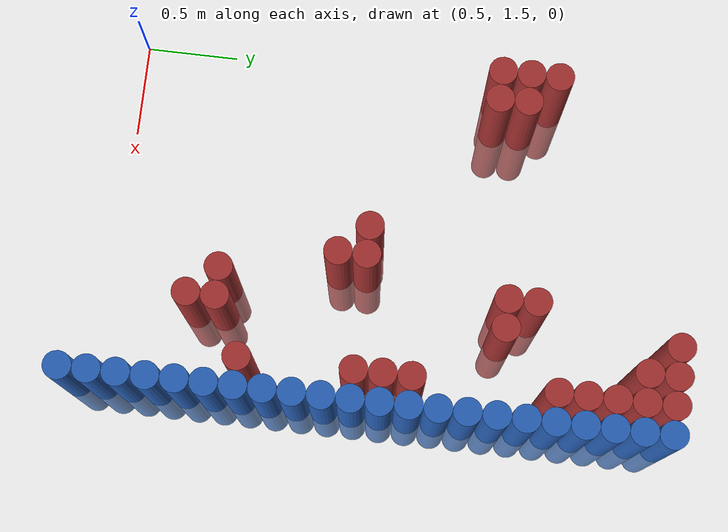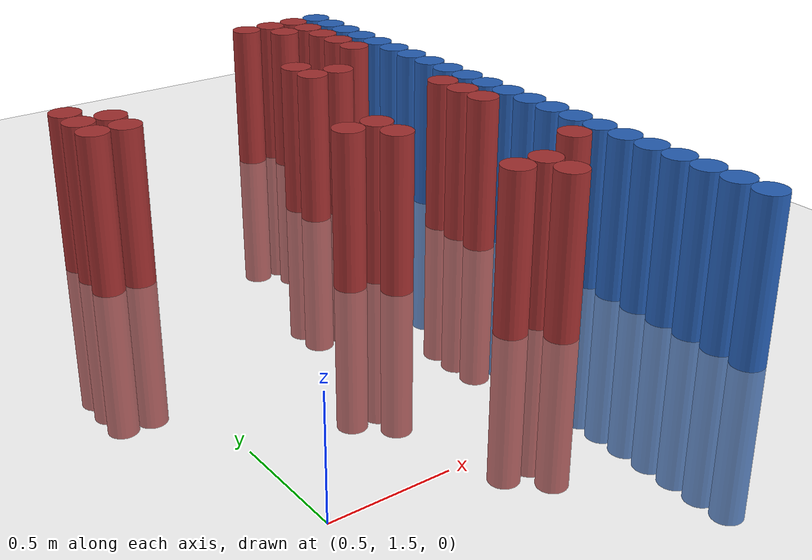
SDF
<sdf version="1.6">
 <world name="default">
  <model name="ground_plane">
   <static>1</static>
   <link name="link">
    <collision name="collision">
     <geometry><plane><normal>0 0 1</normal><size>100 100</size></plane></geometry>
     <surface><friction><ode><mu>100</mu><mu2>50</mu2></ode></friction></surface>
    </collision>
    <visual name="visual">
     <cast_shadows>0</cast_shadows>
     <geometry><plane><normal>0 0 1</normal><size>100 100</size></plane></geometry>
     <material>
      <script><uri>file://media/materials/scripts/gazebo.material</uri><name>Gazebo/Grey</name></script>
     </material>
    </visual>
   </link>
  </model>
  <model name="unit_cylinder_176">
   <static>1</static>
   <pose>0.625000 3.475000 0.000000 0.000000 0.000000 0.000000</pose>
   <link name="link">
    <inertial>
     <mass>1</mass>
     <inertia><ixx>0.145833</ixx><ixy>0</ixy><ixz>0</ixz><iyy>0.145833</iyy><iyz>0</iyz><izz>0.125</izz></inertia>
    </inertial>
    <collision name="collision">
     <geometry><cylinder><radius>0.075000</radius><length>1.5</length></cylinder></geometry>
    </collision>
    <visual name="visual">
     <geometry><cylinder><radius>0.075000</radius><length>1.5</length></cylinder></geometry>
     <material>
      <ambient>0.648000 0.192000 0.192000 1</ambient>
      <diffuse>0.648000 0.192000 0.192000 1</diffuse>
     </material>
     <material>
      <script><name>Gazebo/Grey</name><uri>file://media/materials/scripts/gazebo.material</uri></script>
     </material>
    </visual>
   </link>
  </model>
  <model name="unit_cylinder_177">
   <static>1</static>
   <pose>0.625000 3.625000 0.000000 0.000000 0.000000 0.000000</pose>
   <link name="link">
    <inertial>
     <mass>1</mass>
     <inertia><ixx>0.145833</ixx><ixy>0</ixy><ixz>0</ixz><iyy>0.145833</iyy><iyz>0</iyz><izz>0.125</izz></inertia>
    </inertial>
    <collision name="collision">
     <geometry><cylinder><radius>0.075000</radius><length>1.5</length></cylinder></geometry>
    </collision>
    <visual name="visual">
     <geometry><cylinder><radius>0.075000</radius><length>1.5</length></cylinder></geometry>
     <material>
      <ambient>0.648000 0.192000 0.192000 1</ambient>
      <diffuse>0.648000 0.192000 0.192000 1</diffuse>
     </material>
     <material>
      <script><name>Gazebo/Grey</name><uri>file://media/materials/scripts/gazebo.material</uri></script>
     </material>
    </visual>
   </link>
  </model>
  <model name="unit_cylinder_178">
   <static>1</static>
   <pose>0.625000 3.775000 0.000000 0.000000 0.000000 0.000000</pose>
   <link name="link">
    <inertial>
     <mass>1</mass>
     <inertia><ixx>0.145833</ixx><ixy>0</ixy><ixz>0</ixz><iyy>0.145833</iyy><iyz>0</iyz><izz>0.125</izz></inertia>
    </inertial>
    <collision name="collision">
     <geometry><cylinder><radius>0.075000</radius><length>1.5</length></cylinder></geometry>
    </collision>
    <visual name="visual">
     <geometry><cylinder><radius>0.075000</radius><length>1.5</length></cylinder></geometry>
     <material>
      <ambient>0.648000 0.192000 0.192000 1</ambient>
      <diffuse>0.648000 0.192000 0.192000 1</diffuse>
     </material>
     <material>
      <script><name>Gazebo/Grey</name><uri>file://media/materials/scripts/gazebo.material</uri></script>
     </material>
    </visual>
   </link>
  </model>
  <model name="unit_cylinder_179">
   <static>1</static>
   <pose>0.775000 3.475000 0.000000 0.000000 0.000000 0.000000</pose>
   <link name="link">
    <inertial>
     <mass>1</mass>
     <inertia><ixx>0.145833</ixx><ixy>0</ixy><ixz>0</ixz><iyy>0.145833</iyy><iyz>0</iyz><izz>0.125</izz></inertia>
    </inertial>
    <collision name="collision">
     <geometry><cylinder><radius>0.075000</radius><length>1.5</length></cylinder></geometry>
    </collision>
    <visual name="visual">
     <geometry><cylinder><radius>0.075000</radius><length>1.5</length></cylinder></geometry>
     <material>
      <ambient>0.648000 0.192000 0.192000 1</ambient>
      <diffuse>0.648000 0.192000 0.192000 1</diffuse>
     </material>
     <material>
      <script><name>Gazebo/Grey</name><uri>file://media/materials/scripts/gazebo.material</uri></script>
     </material>
    </visual>
   </link>
  </model>
  <model name="unit_cylinder_180">
   <static>1</static>
   <pose>0.775000 3.625000 0.000000 0.000000 0.000000 0.000000</pose>
   <link name="link">
    <inertial>
     <mass>1</mass>
     <inertia><ixx>0.145833</ixx><ixy>0</ixy><ixz>0</ixz><iyy>0.145833</iyy><iyz>0</iyz><izz>0.125</izz></inertia>
    </inertial>
    <collision name="collision">
     <geometry><cylinder><radius>0.075000</radius><length>1.5</length></cylinder></geometry>
    </collision>
    <visual name="visual">
     <geometry><cylinder><radius>0.075000</radius><length>1.5</length></cylinder></geometry>
     <material>
      <ambient>0.648000 0.192000 0.192000 1</ambient>
      <diffuse>0.648000 0.192000 0.192000 1</diffuse>
     </material>
     <material>
      <script><name>Gazebo/Grey</name><uri>file://media/materials/scripts/gazebo.material</uri></script>
     </material>
    </visual>
   </link>
  </model>
  <model name="unit_cylinder_181">
   <static>1</static>
   <pose>1.525000 2.875000 0.000000 0.000000 0.000000 0.000000</pose>
   <link name="link">
    <inertial>
     <mass>1</mass>
     <inertia><ixx>0.145833</ixx><ixy>0</ixy><ixz>0</ixz><iyy>0.145833</iyy><iyz>0</iyz><izz>0.125</izz></inertia>
    </inertial>
    <collision name="collision">
     <geometry><cylinder><radius>0.075000</radius><length>1.5</length></cylinder></geometry>
    </collision>
    <visual name="visual">
     <geometry><cylinder><radius>0.075000</radius><length>1.5</length></cylinder></geometry>
     <material>
      <ambient>0.648000 0.192000 0.192000 1</ambient>
      <diffuse>0.648000 0.192000 0.192000 1</diffuse>
     </material>
     <material>
      <script><name>Gazebo/Grey</name><uri>file://media/materials/scripts/gazebo.material</uri></script>
     </material>
    </visual>
   </link>
  </model>
  <model name="unit_cylinder_182">
   <static>1</static>
   <pose>1.675000 2.725000 0.000000 0.000000 0.000000 0.000000</pose>
   <link name="link">
    <inertial>
     <mass>1</mass>
     <inertia><ixx>0.145833</ixx><ixy>0</ixy><ixz>0</ixz><iyy>0.145833</iyy><iyz>0</iyz><izz>0.125</izz></inertia>
    </inertial>
    <collision name="collision">
     <geometry><cylinder><radius>0.075000</radius><length>1.5</length></cylinder></geometry>
    </collision>
    <visual name="visual">
     <geometry><cylinder><radius>0.075000</radius><length>1.5</length></cylinder></geometry>
     <material>
      <ambient>0.648000 0.192000 0.192000 1</ambient>
      <diffuse>0.648000 0.192000 0.192000 1</diffuse>
     </material>
     <material>
      <script><name>Gazebo/Grey</name><uri>file://media/materials/scripts/gazebo.material</uri></script>
     </material>
    </visual>
   </link>
  </model>
  <model name="unit_cylinder_183">
   <static>1</static>
   <pose>1.675000 2.875000 0.000000 0.000000 0.000000 0.000000</pose>
   <link name="link">
    <inertial>
     <mass>1</mass>
     <inertia><ixx>0.145833</ixx><ixy>0</ixy><ixz>0</ixz><iyy>0.145833</iyy><iyz>0</iyz><izz>0.125</izz></inertia>
    </inertial>
    <collision name="collision">
     <geometry><cylinder><radius>0.075000</radius><length>1.5</length></cylinder></geometry>
    </collision>
    <visual name="visual">
     <geometry><cylinder><radius>0.075000</radius><length>1.5</length></cylinder></geometry>
     <material>
      <ambient>0.648000 0.192000 0.192000 1</ambient>
      <diffuse>0.648000 0.192000 0.192000 1</diffuse>
     </material>
     <material>
      <script><name>Gazebo/Grey</name><uri>file://media/materials/scripts/gazebo.material</uri></script>
     </material>
    </visual>
   </link>
  </model>
  <model name="unit_cylinder_184">
   <static>1</static>
   <pose>1.825000 2.125000 0.000000 0.000000 0.000000 0.000000</pose>
   <link name="link">
    <inertial>
     <mass>1</mass>
     <inertia><ixx>0.145833</ixx><ixy>0</ixy><ixz>0</ixz><iyy>0.145833</iyy><iyz>0</iyz><izz>0.125</izz></inertia>
    </inertial>
    <collision name="collision">
     <geometry><cylinder><radius>0.075000</radius><length>1.5</length></cylinder></geometry>
    </collision>
    <visual name="visual">
     <geometry><cylinder><radius>0.075000</radius><length>1.5</length></cylinder></geometry>
     <material>
      <ambient>0.648000 0.192000 0.192000 1</ambient>
      <diffuse>0.648000 0.192000 0.192000 1</diffuse>
     </material>
     <material>
      <script><name>Gazebo/Grey</name><uri>file://media/materials/scripts/gazebo.material</uri></script>
     </material>
    </visual>
   </link>
  </model>
  <model name="unit_cylinder_185">
   <static>1</static>
   <pose>1.825000 3.625000 0.000000 0.000000 0.000000 0.000000</pose>
   <link name="link">
    <inertial>
     <mass>1</mass>
     <inertia><ixx>0.145833</ixx><ixy>0</ixy><ixz>0</ixz><iyy>0.145833</iyy><iyz>0</iyz><izz>0.125</izz></inertia>
    </inertial>
    <collision name="collision">
     <geometry><cylinder><radius>0.075000</radius><length>1.5</length></cylinder></geometry>
    </collision>
    <visual name="visual">
     <geometry><cylinder><radius>0.075000</radius><length>1.5</length></cylinder></geometry>
     <material>
      <ambient>0.648000 0.192000 0.192000 1</ambient>
      <diffuse>0.648000 0.192000 0.192000 1</diffuse>
     </material>
     <material>
      <script><name>Gazebo/Grey</name><uri>file://media/materials/scripts/gazebo.material</uri></script>
     </material>
    </visual>
   </link>
  </model>
  <model name="unit_cylinder_186">
   <static>1</static>
   <pose>1.825000 3.775000 0.000000 0.000000 0.000000 0.000000</pose>
   <link name="link">
    <inertial>
     <mass>1</mass>
     <inertia><ixx>0.145833</ixx><ixy>0</ixy><ixz>0</ixz><iyy>0.145833</iyy><iyz>0</iyz><izz>0.125</izz></inertia>
    </inertial>
    <collision name="collision">
     <geometry><cylinder><radius>0.075000</radius><length>1.5</length></cylinder></geometry>
    </collision>
    <visual name="visual">
     <geometry><cylinder><radius>0.075000</radius><length>1.5</length></cylinder></geometry>
     <material>
      <ambient>0.648000 0.192000 0.192000 1</ambient>
      <diffuse>0.648000 0.192000 0.192000 1</diffuse>
     </material>
     <material>
      <script><name>Gazebo/Grey</name><uri>file://media/materials/scripts/gazebo.material</uri></script>
     </material>
    </visual>
   </link>
  </model>
  <model name="unit_cylinder_189">
   <static>1</static>
   <pose>1.975000 1.975000 0.000000 0.000000 0.000000 0.000000</pose>
   <link name="link">
    <inertial>
     <mass>1</mass>
     <inertia><ixx>0.145833</ixx><ixy>0</ixy><ixz>0</ixz><iyy>0.145833</iyy><iyz>0</iyz><izz>0.125</izz></inertia>
    </inertial>
    <collision name="collision">
     <geometry><cylinder><radius>0.075000</radius><length>1.5</length></cylinder></geometry>
    </collision>
    <visual name="visual">
     <geometry><cylinder><radius>0.075000</radius><length>1.5</length></cylinder></geometry>
     <material>
      <ambient>0.648000 0.192000 0.192000 1</ambient>
      <diffuse>0.648000 0.192000 0.192000 1</diffuse>
     </material>
     <material>
      <script><name>Gazebo/Grey</name><uri>file://media/materials/scripts/gazebo.material</uri></script>
     </material>
    </visual>
   </link>
  </model>
  <model name="unit_cylinder_190">
   <static>1</static>
   <pose>1.975000 2.125000 0.000000 0.000000 0.000000 0.000000</pose>
   <link name="link">
    <inertial>
     <mass>1</mass>
     <inertia><ixx>0.145833</ixx><ixy>0</ixy><ixz>0</ixz><iyy>0.145833</iyy><iyz>0</iyz><izz>0.125</izz></inertia>
    </inertial>
    <collision name="collision">
     <geometry><cylinder><radius>0.075000</radius><length>1.5</length></cylinder></geometry>
    </collision>
    <visual name="visual">
     <geometry><cylinder><radius>0.075000</radius><length>1.5</length></cylinder></geometry>
     <material>
      <ambient>0.648000 0.192000 0.192000 1</ambient>
      <diffuse>0.648000 0.192000 0.192000 1</diffuse>
     </material>
     <material>
      <script><name>Gazebo/Grey</name><uri>file://media/materials/scripts/gazebo.material</uri></script>
     </material>
    </visual>
   </link>
  </model>
  <model name="unit_cylinder_191">
   <static>1</static>
   <pose>1.975000 3.625000 0.000000 0.000000 0.000000 0.000000</pose>
   <link name="link">
    <inertial>
     <mass>1</mass>
     <inertia><ixx>0.145833</ixx><ixy>0</ixy><ixz>0</ixz><iyy>0.145833</iyy><iyz>0</iyz><izz>0.125</izz></inertia>
    </inertial>
    <collision name="collision">
     <geometry><cylinder><radius>0.075000</radius><length>1.5</length></cylinder></geometry>
    </collision>
    <visual name="visual">
     <geometry><cylinder><radius>0.075000</radius><length>1.5</length></cylinder></geometry>
     <material>
      <ambient>0.648000 0.192000 0.192000 1</ambient>
      <diffuse>0.648000 0.192000 0.192000 1</diffuse>
     </material>
     <material>
      <script><name>Gazebo/Grey</name><uri>file://media/materials/scripts/gazebo.material</uri></script>
     </material>
    </visual>
   </link>
  </model>
  <model name="unit_cylinder_192">
   <static>1</static>
   <pose>1.975000 4.525000 0.000000 0.000000 0.000000 0.000000</pose>
   <link name="link">
    <inertial>
     <mass>1</mass>
     <inertia><ixx>0.145833</ixx><ixy>0</ixy><ixz>0</ixz><iyy>0.145833</iyy><iyz>0</iyz><izz>0.125</izz></inertia>
    </inertial>
    <collision name="collision">
     <geometry><cylinder><radius>0.075000</radius><length>1.5</length></cylinder></geometry>
    </collision>
    <visual name="visual">
     <geometry><cylinder><radius>0.075000</radius><length>1.5</length></cylinder></geometry>
     <material>
      <ambient>0.648000 0.192000 0.192000 1</ambient>
      <diffuse>0.648000 0.192000 0.192000 1</diffuse>
     </material>
     <material>
      <script><name>Gazebo/Grey</name><uri>file://media/materials/scripts/gazebo.material</uri></script>
     </material>
    </visual>
   </link>
  </model>
  <model name="unit_cylinder_195">
   <static>1</static>
   <pose>2.125000 4.375000 0.000000 0.000000 0.000000 0.000000</pose>
   <link name="link">
    <inertial>
     <mass>1</mass>
     <inertia><ixx>0.145833</ixx><ixy>0</ixy><ixz>0</ixz><iyy>0.145833</iyy><iyz>0</iyz><izz>0.125</izz></inertia>
    </inertial>
    <collision name="collision">
     <geometry><cylinder><radius>0.075000</radius><length>1.5</length></cylinder></geometry>
    </collision>
    <visual name="visual">
     <geometry><cylinder><radius>0.075000</radius><length>1.5</length></cylinder></geometry>
     <material>
      <ambient>0.648000 0.192000 0.192000 1</ambient>
      <diffuse>0.648000 0.192000 0.192000 1</diffuse>
     </material>
     <material>
      <script><name>Gazebo/Grey</name><uri>file://media/materials/scripts/gazebo.material</uri></script>
     </material>
    </visual>
   </link>
  </model>
  <model name="unit_cylinder_196">
   <static>1</static>
   <pose>2.125000 4.525000 0.000000 0.000000 0.000000 0.000000</pose>
   <link name="link">
    <inertial>
     <mass>1</mass>
     <inertia><ixx>0.145833</ixx><ixy>0</ixy><ixz>0</ixz><iyy>0.145833</iyy><iyz>0</iyz><izz>0.125</izz></inertia>
    </inertial>
    <collision name="collision">
     <geometry><cylinder><radius>0.075000</radius><length>1.5</length></cylinder></geometry>
    </collision>
    <visual name="visual">
     <geometry><cylinder><radius>0.075000</radius><length>1.5</length></cylinder></geometry>
     <material>
      <ambient>0.648000 0.192000 0.192000 1</ambient>
      <diffuse>0.648000 0.192000 0.192000 1</diffuse>
     </material>
     <material>
      <script><name>Gazebo/Grey</name><uri>file://media/materials/scripts/gazebo.material</uri></script>
     </material>
    </visual>
   </link>
  </model>
  <model name="unit_cylinder_200">
   <static>1</static>
   <pose>2.275000 2.275000 0.000000 0.000000 0.000000 0.000000</pose>
   <link name="link">
    <inertial>
     <mass>1</mass>
     <inertia><ixx>0.145833</ixx><ixy>0</ixy><ixz>0</ixz><iyy>0.145833</iyy><iyz>0</iyz><izz>0.125</izz></inertia>
    </inertial>
    <collision name="collision">
     <geometry><cylinder><radius>0.075000</radius><length>1.5</length></cylinder></geometry>
    </collision>
    <visual name="visual">
     <geometry><cylinder><radius>0.075000</radius><length>1.5</length></cylinder></geometry>
     <material>
      <ambient>0.648000 0.192000 0.192000 1</ambient>
      <diffuse>0.648000 0.192000 0.192000 1</diffuse>
     </material>
     <material>
      <script><name>Gazebo/Grey</name><uri>file://media/materials/scripts/gazebo.material</uri></script>
     </material>
    </visual>
   </link>
  </model>
  <model name="unit_cylinder_201">
   <static>1</static>
   <pose>2.275000 2.875000 0.000000 0.000000 0.000000 0.000000</pose>
   <link name="link">
    <inertial>
     <mass>1</mass>
     <inertia><ixx>0.145833</ixx><ixy>0</ixy><ixz>0</ixz><iyy>0.145833</iyy><iyz>0</iyz><izz>0.125</izz></inertia>
    </inertial>
    <collision name="collision">
     <geometry><cylinder><radius>0.075000</radius><length>1.5</length></cylinder></geometry>
    </collision>
    <visual name="visual">
     <geometry><cylinder><radius>0.075000</radius><length>1.5</length></cylinder></geometry>
     <material>
      <ambient>0.648000 0.192000 0.192000 1</ambient>
      <diffuse>0.648000 0.192000 0.192000 1</diffuse>
     </material>
     <material>
      <script><name>Gazebo/Grey</name><uri>file://media/materials/scripts/gazebo.material</uri></script>
     </material>
    </visual>
   </link>
  </model>
  <model name="unit_cylinder_202">
   <static>1</static>
   <pose>2.275000 3.025000 0.000000 0.000000 0.000000 0.000000</pose>
   <link name="link">
    <inertial>
     <mass>1</mass>
     <inertia><ixx>0.145833</ixx><ixy>0</ixy><ixz>0</ixz><iyy>0.145833</iyy><iyz>0</iyz><izz>0.125</izz></inertia>
    </inertial>
    <collision name="collision">
     <geometry><cylinder><radius>0.075000</radius><length>1.5</length></cylinder></geometry>
    </collision>
    <visual name="visual">
     <geometry><cylinder><radius>0.075000</radius><length>1.5</length></cylinder></geometry>
     <material>
      <ambient>0.648000 0.192000 0.192000 1</ambient>
      <diffuse>0.648000 0.192000 0.192000 1</diffuse>
     </material>
     <material>
      <script><name>Gazebo/Grey</name><uri>file://media/materials/scripts/gazebo.material</uri></script>
     </material>
    </visual>
   </link>
  </model>
  <model name="unit_cylinder_203">
   <static>1</static>
   <pose>2.275000 3.175000 0.000000 0.000000 0.000000 0.000000</pose>
   <link name="link">
    <inertial>
     <mass>1</mass>
     <inertia><ixx>0.145833</ixx><ixy>0</ixy><ixz>0</ixz><iyy>0.145833</iyy><iyz>0</iyz><izz>0.125</izz></inertia>
    </inertial>
    <collision name="collision">
     <geometry><cylinder><radius>0.075000</radius><length>1.5</length></cylinder></geometry>
    </collision>
    <visual name="visual">
     <geometry><cylinder><radius>0.075000</radius><length>1.5</length></cylinder></geometry>
     <material>
      <ambient>0.648000 0.192000 0.192000 1</ambient>
      <diffuse>0.648000 0.192000 0.192000 1</diffuse>
     </material>
     <material>
      <script><name>Gazebo/Grey</name><uri>file://media/materials/scripts/gazebo.material</uri></script>
     </material>
    </visual>
   </link>
  </model>
  <model name="unit_cylinder_204">
   <static>1</static>
   <pose>2.275000 3.925000 0.000000 0.000000 0.000000 0.000000</pose>
   <link name="link">
    <inertial>
     <mass>1</mass>
     <inertia><ixx>0.145833</ixx><ixy>0</ixy><ixz>0</ixz><iyy>0.145833</iyy><iyz>0</iyz><izz>0.125</izz></inertia>
    </inertial>
    <collision name="collision">
     <geometry><cylinder><radius>0.075000</radius><length>1.5</length></cylinder></geometry>
    </collision>
    <visual name="visual">
     <geometry><cylinder><radius>0.075000</radius><length>1.5</length></cylinder></geometry>
     <material>
      <ambient>0.648000 0.192000 0.192000 1</ambient>
      <diffuse>0.648000 0.192000 0.192000 1</diffuse>
     </material>
     <material>
      <script><name>Gazebo/Grey</name><uri>file://media/materials/scripts/gazebo.material</uri></script>
     </material>
    </visual>
   </link>
  </model>
  <model name="unit_cylinder_205">
   <static>1</static>
   <pose>2.275000 4.075000 0.000000 0.000000 0.000000 0.000000</pose>
   <link name="link">
    <inertial>
     <mass>1</mass>
     <inertia><ixx>0.145833</ixx><ixy>0</ixy><ixz>0</ixz><iyy>0.145833</iyy><iyz>0</iyz><izz>0.125</izz></inertia>
    </inertial>
    <collision name="collision">
     <geometry><cylinder><radius>0.075000</radius><length>1.5</length></cylinder></geometry>
    </collision>
    <visual name="visual">
     <geometry><cylinder><radius>0.075000</radius><length>1.5</length></cylinder></geometry>
     <material>
      <ambient>0.648000 0.192000 0.192000 1</ambient>
      <diffuse>0.648000 0.192000 0.192000 1</diffuse>
     </material>
     <material>
      <script><name>Gazebo/Grey</name><uri>file://media/materials/scripts/gazebo.material</uri></script>
     </material>
    </visual>
   </link>
  </model>
  <model name="unit_cylinder_206">
   <static>1</static>
   <pose>2.275000 4.225000 0.000000 0.000000 0.000000 0.000000</pose>
   <link name="link">
    <inertial>
     <mass>1</mass>
     <inertia><ixx>0.145833</ixx><ixy>0</ixy><ixz>0</ixz><iyy>0.145833</iyy><iyz>0</iyz><izz>0.125</izz></inertia>
    </inertial>
    <collision name="collision">
     <geometry><cylinder><radius>0.075000</radius><length>1.5</length></cylinder></geometry>
    </collision>
    <visual name="visual">
     <geometry><cylinder><radius>0.075000</radius><length>1.5</length></cylinder></geometry>
     <material>
      <ambient>0.648000 0.192000 0.192000 1</ambient>
      <diffuse>0.648000 0.192000 0.192000 1</diffuse>
     </material>
     <material>
      <script><name>Gazebo/Grey</name><uri>file://media/materials/scripts/gazebo.material</uri></script>
     </material>
    </visual>
   </link>
  </model>
  <model name="unit_cylinder_207">
   <static>1</static>
   <pose>2.275000 4.375000 0.000000 0.000000 0.000000 0.000000</pose>
   <link name="link">
    <inertial>
     <mass>1</mass>
     <inertia><ixx>0.145833</ixx><ixy>0</ixy><ixz>0</ixz><iyy>0.145833</iyy><iyz>0</iyz><izz>0.125</izz></inertia>
    </inertial>
    <collision name="collision">
     <geometry><cylinder><radius>0.075000</radius><length>1.5</length></cylinder></geometry>
    </collision>
    <visual name="visual">
     <geometry><cylinder><radius>0.075000</radius><length>1.5</length></cylinder></geometry>
     <material>
      <ambient>0.648000 0.192000 0.192000 1</ambient>
      <diffuse>0.648000 0.192000 0.192000 1</diffuse>
     </material>
     <material>
      <script><name>Gazebo/Grey</name><uri>file://media/materials/scripts/gazebo.material</uri></script>
     </material>
    </visual>
   </link>
  </model>
  <model name="unit_cylinder_208">
   <static>1</static>
   <pose>2.275000 4.525000 0.000000 0.000000 0.000000 0.000000</pose>
   <link name="link">
    <inertial>
     <mass>1</mass>
     <inertia><ixx>0.145833</ixx><ixy>0</ixy><ixz>0</ixz><iyy>0.145833</iyy><iyz>0</iyz><izz>0.125</izz></inertia>
    </inertial>
    <collision name="collision">
     <geometry><cylinder><radius>0.075000</radius><length>1.5</length></cylinder></geometry>
    </collision>
    <visual name="visual">
     <geometry><cylinder><radius>0.075000</radius><length>1.5</length></cylinder></geometry>
     <material>
      <ambient>0.648000 0.192000 0.192000 1</ambient>
      <diffuse>0.648000 0.192000 0.192000 1</diffuse>
     </material>
     <material>
      <script><name>Gazebo/Grey</name><uri>file://media/materials/scripts/gazebo.material</uri></script>
     </material>
    </visual>
   </link>
  </model>
  <model name="unit_cylinder_217">
   <static>1</static>
   <pose>2.425000 1.375000 0.000000 0.000000 0.000000 0.000000</pose>
   <link name="link">
    <inertial>
     <mass>1</mass>
     <inertia><ixx>0.145833</ixx><ixy>0</ixy><ixz>0</ixz><iyy>0.145833</iyy><iyz>0</iyz><izz>0.125</izz></inertia>
    </inertial>
    <collision name="collision">
     <geometry><cylinder><radius>0.075000</radius><length>1.5</length></cylinder></geometry>
    </collision>
    <visual name="visual">
     <geometry><cylinder><radius>0.075000</radius><length>1.5</length></cylinder></geometry>
     <material>
      <ambient>0.152000 0.379000 0.720000 1</ambient>
      <diffuse>0.152000 0.379000 0.720000 1</diffuse>
     </material>
     <material>
      <script><name>Gazebo/Grey</name><uri>file://media/materials/scripts/gazebo.material</uri></script>
     </material>
    </visual>
   </link>
  </model>
  <model name="unit_cylinder_218">
   <static>1</static>
   <pose>2.425000 1.525000 0.000000 0.000000 0.000000 0.000000</pose>
   <link name="link">
    <inertial>
     <mass>1</mass>
     <inertia><ixx>0.145833</ixx><ixy>0</ixy><ixz>0</ixz><iyy>0.145833</iyy><iyz>0</iyz><izz>0.125</izz></inertia>
    </inertial>
    <collision name="collision">
     <geometry><cylinder><radius>0.075000</radius><length>1.5</length></cylinder></geometry>
    </collision>
    <visual name="visual">
     <geometry><cylinder><radius>0.075000</radius><length>1.5</length></cylinder></geometry>
     <material>
      <ambient>0.152000 0.379000 0.720000 1</ambient>
      <diffuse>0.152000 0.379000 0.720000 1</diffuse>
     </material>
     <material>
      <script><name>Gazebo/Grey</name><uri>file://media/materials/scripts/gazebo.material</uri></script>
     </material>
    </visual>
   </link>
  </model>
  <model name="unit_cylinder_219">
   <static>1</static>
   <pose>2.425000 1.675000 0.000000 0.000000 0.000000 0.000000</pose>
   <link name="link">
    <inertial>
     <mass>1</mass>
     <inertia><ixx>0.145833</ixx><ixy>0</ixy><ixz>0</ixz><iyy>0.145833</iyy><iyz>0</iyz><izz>0.125</izz></inertia>
    </inertial>
    <collision name="collision">
     <geometry><cylinder><radius>0.075000</radius><length>1.5</length></cylinder></geometry>
    </collision>
    <visual name="visual">
     <geometry><cylinder><radius>0.075000</radius><length>1.5</length></cylinder></geometry>
     <material>
      <ambient>0.152000 0.379000 0.720000 1</ambient>
      <diffuse>0.152000 0.379000 0.720000 1</diffuse>
     </material>
     <material>
      <script><name>Gazebo/Grey</name><uri>file://media/materials/scripts/gazebo.material</uri></script>
     </material>
    </visual>
   </link>
  </model>
  <model name="unit_cylinder_220">
   <static>1</static>
   <pose>2.425000 1.825000 0.000000 0.000000 0.000000 0.000000</pose>
   <link name="link">
    <inertial>
     <mass>1</mass>
     <inertia><ixx>0.145833</ixx><ixy>0</ixy><ixz>0</ixz><iyy>0.145833</iyy><iyz>0</iyz><izz>0.125</izz></inertia>
    </inertial>
    <collision name="collision">
     <geometry><cylinder><radius>0.075000</radius><length>1.5</length></cylinder></geometry>
    </collision>
    <visual name="visual">
     <geometry><cylinder><radius>0.075000</radius><length>1.5</length></cylinder></geometry>
     <material>
      <ambient>0.152000 0.379000 0.720000 1</ambient>
      <diffuse>0.152000 0.379000 0.720000 1</diffuse>
     </material>
     <material>
      <script><name>Gazebo/Grey</name><uri>file://media/materials/scripts/gazebo.material</uri></script>
     </material>
    </visual>
   </link>
  </model>
  <model name="unit_cylinder_221">
   <static>1</static>
   <pose>2.425000 1.975000 0.000000 0.000000 0.000000 0.000000</pose>
   <link name="link">
    <inertial>
     <mass>1</mass>
     <inertia><ixx>0.145833</ixx><ixy>0</ixy><ixz>0</ixz><iyy>0.145833</iyy><iyz>0</iyz><izz>0.125</izz></inertia>
    </inertial>
    <collision name="collision">
     <geometry><cylinder><radius>0.075000</radius><length>1.5</length></cylinder></geometry>
    </collision>
    <visual name="visual">
     <geometry><cylinder><radius>0.075000</radius><length>1.5</length></cylinder></geometry>
     <material>
      <ambient>0.152000 0.379000 0.720000 1</ambient>
      <diffuse>0.152000 0.379000 0.720000 1</diffuse>
     </material>
     <material>
      <script><name>Gazebo/Grey</name><uri>file://media/materials/scripts/gazebo.material</uri></script>
     </material>
    </visual>
   </link>
  </model>
  <model name="unit_cylinder_222">
   <static>1</static>
   <pose>2.425000 2.125000 0.000000 0.000000 0.000000 0.000000</pose>
   <link name="link">
    <inertial>
     <mass>1</mass>
     <inertia><ixx>0.145833</ixx><ixy>0</ixy><ixz>0</ixz><iyy>0.145833</iyy><iyz>0</iyz><izz>0.125</izz></inertia>
    </inertial>
    <collision name="collision">
     <geometry><cylinder><radius>0.075000</radius><length>1.5</length></cylinder></geometry>
    </collision>
    <visual name="visual">
     <geometry><cylinder><radius>0.075000</radius><length>1.5</length></cylinder></geometry>
     <material>
      <ambient>0.152000 0.379000 0.720000 1</ambient>
      <diffuse>0.152000 0.379000 0.720000 1</diffuse>
     </material>
     <material>
      <script><name>Gazebo/Grey</name><uri>file://media/materials/scripts/gazebo.material</uri></script>
     </material>
    </visual>
   </link>
  </model>
  <model name="unit_cylinder_223">
   <static>1</static>
   <pose>2.425000 2.275000 0.000000 0.000000 0.000000 0.000000</pose>
   <link name="link">
    <inertial>
     <mass>1</mass>
     <inertia><ixx>0.145833</ixx><ixy>0</ixy><ixz>0</ixz><iyy>0.145833</iyy><iyz>0</iyz><izz>0.125</izz></inertia>
    </inertial>
    <collision name="collision">
     <geometry><cylinder><radius>0.075000</radius><length>1.5</length></cylinder></geometry>
    </collision>
    <visual name="visual">
     <geometry><cylinder><radius>0.075000</radius><length>1.5</length></cylinder></geometry>
     <material>
      <ambient>0.152000 0.379000 0.720000 1</ambient>
      <diffuse>0.152000 0.379000 0.720000 1</diffuse>
     </material>
     <material>
      <script><name>Gazebo/Grey</name><uri>file://media/materials/scripts/gazebo.material</uri></script>
     </material>
    </visual>
   </link>
  </model>
  <model name="unit_cylinder_224">
   <static>1</static>
   <pose>2.425000 2.425000 0.000000 0.000000 0.000000 0.000000</pose>
   <link name="link">
    <inertial>
     <mass>1</mass>
     <inertia><ixx>0.145833</ixx><ixy>0</ixy><ixz>0</ixz><iyy>0.145833</iyy><iyz>0</iyz><izz>0.125</izz></inertia>
    </inertial>
    <collision name="collision">
     <geometry><cylinder><radius>0.075000</radius><length>1.5</length></cylinder></geometry>
    </collision>
    <visual name="visual">
     <geometry><cylinder><radius>0.075000</radius><length>1.5</length></cylinder></geometry>
     <material>
      <ambient>0.152000 0.379000 0.720000 1</ambient>
      <diffuse>0.152000 0.379000 0.720000 1</diffuse>
     </material>
     <material>
      <script><name>Gazebo/Grey</name><uri>file://media/materials/scripts/gazebo.material</uri></script>
     </material>
    </visual>
   </link>
  </model>
  <model name="unit_cylinder_225">
   <static>1</static>
   <pose>2.425000 2.575000 0.000000 0.000000 0.000000 0.000000</pose>
   <link name="link">
    <inertial>
     <mass>1</mass>
     <inertia><ixx>0.145833</ixx><ixy>0</ixy><ixz>0</ixz><iyy>0.145833</iyy><iyz>0</iyz><izz>0.125</izz></inertia>
    </inertial>
    <collision name="collision">
     <geometry><cylinder><radius>0.075000</radius><length>1.5</length></cylinder></geometry>
    </collision>
    <visual name="visual">
     <geometry><cylinder><radius>0.075000</radius><length>1.5</length></cylinder></geometry>
     <material>
      <ambient>0.152000 0.379000 0.720000 1</ambient>
      <diffuse>0.152000 0.379000 0.720000 1</diffuse>
     </material>
     <material>
      <script><name>Gazebo/Grey</name><uri>file://media/materials/scripts/gazebo.material</uri></script>
     </material>
    </visual>
   </link>
  </model>
  <model name="unit_cylinder_226">
   <static>1</static>
   <pose>2.425000 2.725000 0.000000 0.000000 0.000000 0.000000</pose>
   <link name="link">
    <inertial>
     <mass>1</mass>
     <inertia><ixx>0.145833</ixx><ixy>0</ixy><ixz>0</ixz><iyy>0.145833</iyy><iyz>0</iyz><izz>0.125</izz></inertia>
    </inertial>
    <collision name="collision">
     <geometry><cylinder><radius>0.075000</radius><length>1.5</length></cylinder></geometry>
    </collision>
    <visual name="visual">
     <geometry><cylinder><radius>0.075000</radius><length>1.5</length></cylinder></geometry>
     <material>
      <ambient>0.152000 0.379000 0.720000 1</ambient>
      <diffuse>0.152000 0.379000 0.720000 1</diffuse>
     </material>
     <material>
      <script><name>Gazebo/Grey</name><uri>file://media/materials/scripts/gazebo.material</uri></script>
     </material>
    </visual>
   </link>
  </model>
  <model name="unit_cylinder_227">
   <static>1</static>
   <pose>2.425000 2.875000 0.000000 0.000000 0.000000 0.000000</pose>
   <link name="link">
    <inertial>
     <mass>1</mass>
     <inertia><ixx>0.145833</ixx><ixy>0</ixy><ixz>0</ixz><iyy>0.145833</iyy><iyz>0</iyz><izz>0.125</izz></inertia>
    </inertial>
    <collision name="collision">
     <geometry><cylinder><radius>0.075000</radius><length>1.5</length></cylinder></geometry>
    </collision>
    <visual name="visual">
     <geometry><cylinder><radius>0.075000</radius><length>1.5</length></cylinder></geometry>
     <material>
      <ambient>0.152000 0.379000 0.720000 1</ambient>
      <diffuse>0.152000 0.379000 0.720000 1</diffuse>
     </material>
     <material>
      <script><name>Gazebo/Grey</name><uri>file://media/materials/scripts/gazebo.material</uri></script>
     </material>
    </visual>
   </link>
  </model>
  <model name="unit_cylinder_228">
   <static>1</static>
   <pose>2.425000 3.025000 0.000000 0.000000 0.000000 0.000000</pose>
   <link name="link">
    <inertial>
     <mass>1</mass>
     <inertia><ixx>0.145833</ixx><ixy>0</ixy><ixz>0</ixz><iyy>0.145833</iyy><iyz>0</iyz><izz>0.125</izz></inertia>
    </inertial>
    <collision name="collision">
     <geometry><cylinder><radius>0.075000</radius><length>1.5</length></cylinder></geometry>
    </collision>
    <visual name="visual">
     <geometry><cylinder><radius>0.075000</radius><length>1.5</length></cylinder></geometry>
     <material>
      <ambient>0.152000 0.379000 0.720000 1</ambient>
      <diffuse>0.152000 0.379000 0.720000 1</diffuse>
     </material>
     <material>
      <script><name>Gazebo/Grey</name><uri>file://media/materials/scripts/gazebo.material</uri></script>
     </material>
    </visual>
   </link>
  </model>
  <model name="unit_cylinder_229">
   <static>1</static>
   <pose>2.425000 3.175000 0.000000 0.000000 0.000000 0.000000</pose>
   <link name="link">
    <inertial>
     <mass>1</mass>
     <inertia><ixx>0.145833</ixx><ixy>0</ixy><ixz>0</ixz><iyy>0.145833</iyy><iyz>0</iyz><izz>0.125</izz></inertia>
    </inertial>
    <collision name="collision">
     <geometry><cylinder><radius>0.075000</radius><length>1.5</length></cylinder></geometry>
    </collision>
    <visual name="visual">
     <geometry><cylinder><radius>0.075000</radius><length>1.5</length></cylinder></geometry>
     <material>
      <ambient>0.152000 0.379000 0.720000 1</ambient>
      <diffuse>0.152000 0.379000 0.720000 1</diffuse>
     </material>
     <material>
      <script><name>Gazebo/Grey</name><uri>file://media/materials/scripts/gazebo.material</uri></script>
     </material>
    </visual>
   </link>
  </model>
  <model name="unit_cylinder_230">
   <static>1</static>
   <pose>2.425000 3.325000 0.000000 0.000000 0.000000 0.000000</pose>
   <link name="link">
    <inertial>
     <mass>1</mass>
     <inertia><ixx>0.145833</ixx><ixy>0</ixy><ixz>0</ixz><iyy>0.145833</iyy><iyz>0</iyz><izz>0.125</izz></inertia>
    </inertial>
    <collision name="collision">
     <geometry><cylinder><radius>0.075000</radius><length>1.5</length></cylinder></geometry>
    </collision>
    <visual name="visual">
     <geometry><cylinder><radius>0.075000</radius><length>1.5</length></cylinder></geometry>
     <material>
      <ambient>0.152000 0.379000 0.720000 1</ambient>
      <diffuse>0.152000 0.379000 0.720000 1</diffuse>
     </material>
     <material>
      <script><name>Gazebo/Grey</name><uri>file://media/materials/scripts/gazebo.material</uri></script>
     </material>
    </visual>
   </link>
  </model>
  <model name="unit_cylinder_231">
   <static>1</static>
   <pose>2.425000 3.475000 0.000000 0.000000 0.000000 0.000000</pose>
   <link name="link">
    <inertial>
     <mass>1</mass>
     <inertia><ixx>0.145833</ixx><ixy>0</ixy><ixz>0</ixz><iyy>0.145833</iyy><iyz>0</iyz><izz>0.125</izz></inertia>
    </inertial>
    <collision name="collision">
     <geometry><cylinder><radius>0.075000</radius><length>1.5</length></cylinder></geometry>
    </collision>
    <visual name="visual">
     <geometry><cylinder><radius>0.075000</radius><length>1.5</length></cylinder></geometry>
     <material>
      <ambient>0.152000 0.379000 0.720000 1</ambient>
      <diffuse>0.152000 0.379000 0.720000 1</diffuse>
     </material>
     <material>
      <script><name>Gazebo/Grey</name><uri>file://media/materials/scripts/gazebo.material</uri></script>
     </material>
    </visual>
   </link>
  </model>
  <model name="unit_cylinder_232">
   <static>1</static>
   <pose>2.425000 3.625000 0.000000 0.000000 0.000000 0.000000</pose>
   <link name="link">
    <inertial>
     <mass>1</mass>
     <inertia><ixx>0.145833</ixx><ixy>0</ixy><ixz>0</ixz><iyy>0.145833</iyy><iyz>0</iyz><izz>0.125</izz></inertia>
    </inertial>
    <collision name="collision">
     <geometry><cylinder><radius>0.075000</radius><length>1.5</length></cylinder></geometry>
    </collision>
    <visual name="visual">
     <geometry><cylinder><radius>0.075000</radius><length>1.5</length></cylinder></geometry>
     <material>
      <ambient>0.152000 0.379000 0.720000 1</ambient>
      <diffuse>0.152000 0.379000 0.720000 1</diffuse>
     </material>
     <material>
      <script><name>Gazebo/Grey</name><uri>file://media/materials/scripts/gazebo.material</uri></script>
     </material>
    </visual>
   </link>
  </model>
  <model name="unit_cylinder_233">
   <static>1</static>
   <pose>2.425000 3.775000 0.000000 0.000000 0.000000 0.000000</pose>
   <link name="link">
    <inertial>
     <mass>1</mass>
     <inertia><ixx>0.145833</ixx><ixy>0</ixy><ixz>0</ixz><iyy>0.145833</iyy><iyz>0</iyz><izz>0.125</izz></inertia>
    </inertial>
    <collision name="collision">
     <geometry><cylinder><radius>0.075000</radius><length>1.5</length></cylinder></geometry>
    </collision>
    <visual name="visual">
     <geometry><cylinder><radius>0.075000</radius><length>1.5</length></cylinder></geometry>
     <material>
      <ambient>0.152000 0.379000 0.720000 1</ambient>
      <diffuse>0.152000 0.379000 0.720000 1</diffuse>
     </material>
     <material>
      <script><name>Gazebo/Grey</name><uri>file://media/materials/scripts/gazebo.material</uri></script>
     </material>
    </visual>
   </link>
  </model>
  <model name="unit_cylinder_234">
   <static>1</static>
   <pose>2.425000 3.925000 0.000000 0.000000 0.000000 0.000000</pose>
   <link name="link">
    <inertial>
     <mass>1</mass>
     <inertia><ixx>0.145833</ixx><ixy>0</ixy><ixz>0</ixz><iyy>0.145833</iyy><iyz>0</iyz><izz>0.125</izz></inertia>
    </inertial>
    <collision name="collision">
     <geometry><cylinder><radius>0.075000</radius><length>1.5</length></cylinder></geometry>
    </collision>
    <visual name="visual">
     <geometry><cylinder><radius>0.075000</radius><length>1.5</length></cylinder></geometry>
     <material>
      <ambient>0.152000 0.379000 0.720000 1</ambient>
      <diffuse>0.152000 0.379000 0.720000 1</diffuse>
     </material>
     <material>
      <script><name>Gazebo/Grey</name><uri>file://media/materials/scripts/gazebo.material</uri></script>
     </material>
    </visual>
   </link>
  </model>
  <model name="unit_cylinder_235">
   <static>1</static>
   <pose>2.425000 4.075000 0.000000 0.000000 0.000000 0.000000</pose>
   <link name="link">
    <inertial>
     <mass>1</mass>
     <inertia><ixx>0.145833</ixx><ixy>0</ixy><ixz>0</ixz><iyy>0.145833</iyy><iyz>0</iyz><izz>0.125</izz></inertia>
    </inertial>
    <collision name="collision">
     <geometry><cylinder><radius>0.075000</radius><length>1.5</length></cylinder></geometry>
    </collision>
    <visual name="visual">
     <geometry><cylinder><radius>0.075000</radius><length>1.5</length></cylinder></geometry>
     <material>
      <ambient>0.152000 0.379000 0.720000 1</ambient>
      <diffuse>0.152000 0.379000 0.720000 1</diffuse>
     </material>
     <material>
      <script><name>Gazebo/Grey</name><uri>file://media/materials/scripts/gazebo.material</uri></script>
     </material>
    </visual>
   </link>
  </model>
  <model name="unit_cylinder_236">
   <static>1</static>
   <pose>2.425000 4.225000 0.000000 0.000000 0.000000 0.000000</pose>
   <link name="link">
    <inertial>
     <mass>1</mass>
     <inertia><ixx>0.145833</ixx><ixy>0</ixy><ixz>0</ixz><iyy>0.145833</iyy><iyz>0</iyz><izz>0.125</izz></inertia>
    </inertial>
    <collision name="collision">
     <geometry><cylinder><radius>0.075000</radius><length>1.5</length></cylinder></geometry>
    </collision>
    <visual name="visual">
     <geometry><cylinder><radius>0.075000</radius><length>1.5</length></cylinder></geometry>
     <material>
      <ambient>0.152000 0.379000 0.720000 1</ambient>
      <diffuse>0.152000 0.379000 0.720000 1</diffuse>
     </material>
     <material>
      <script><name>Gazebo/Grey</name><uri>file://media/materials/scripts/gazebo.material</uri></script>
     </material>
    </visual>
   </link>
  </model>
  <model name="unit_cylinder_237">
   <static>1</static>
   <pose>2.425000 4.375000 0.000000 0.000000 0.000000 0.000000</pose>
   <link name="link">
    <inertial>
     <mass>1</mass>
     <inertia><ixx>0.145833</ixx><ixy>0</ixy><ixz>0</ixz><iyy>0.145833</iyy><iyz>0</iyz><izz>0.125</izz></inertia>
    </inertial>
    <collision name="collision">
     <geometry><cylinder><radius>0.075000</radius><length>1.5</length></cylinder></geometry>
    </collision>
    <visual name="visual">
     <geometry><cylinder><radius>0.075000</radius><length>1.5</length></cylinder></geometry>
     <material>
      <ambient>0.152000 0.379000 0.720000 1</ambient>
      <diffuse>0.152000 0.379000 0.720000 1</diffuse>
     </material>
     <material>
      <script><name>Gazebo/Grey</name><uri>file://media/materials/scripts/gazebo.material</uri></script>
     </material>
    </visual>
   </link>
  </model>
  <model name="unit_cylinder_238">
   <static>1</static>
   <pose>2.425000 4.525000 0.000000 0.000000 0.000000 0.000000</pose>
   <link name="link">
    <inertial>
     <mass>1</mass>
     <inertia><ixx>0.145833</ixx><ixy>0</ixy><ixz>0</ixz><iyy>0.145833</iyy><iyz>0</iyz><izz>0.125</izz></inertia>
    </inertial>
    <collision name="collision">
     <geometry><cylinder><radius>0.075000</radius><length>1.5</length></cylinder></geometry>
    </collision>
    <visual name="visual">
     <geometry><cylinder><radius>0.075000</radius><length>1.5</length></cylinder></geometry>
     <material>
      <ambient>0.152000 0.379000 0.720000 1</ambient>
      <diffuse>0.152000 0.379000 0.720000 1</diffuse>
     </material>
     <material>
      <script><name>Gazebo/Grey</name><uri>file://media/materials/scripts/gazebo.material</uri></script>
     </material>
    </visual>
   </link>
  </model>
 </world>
</sdf>
